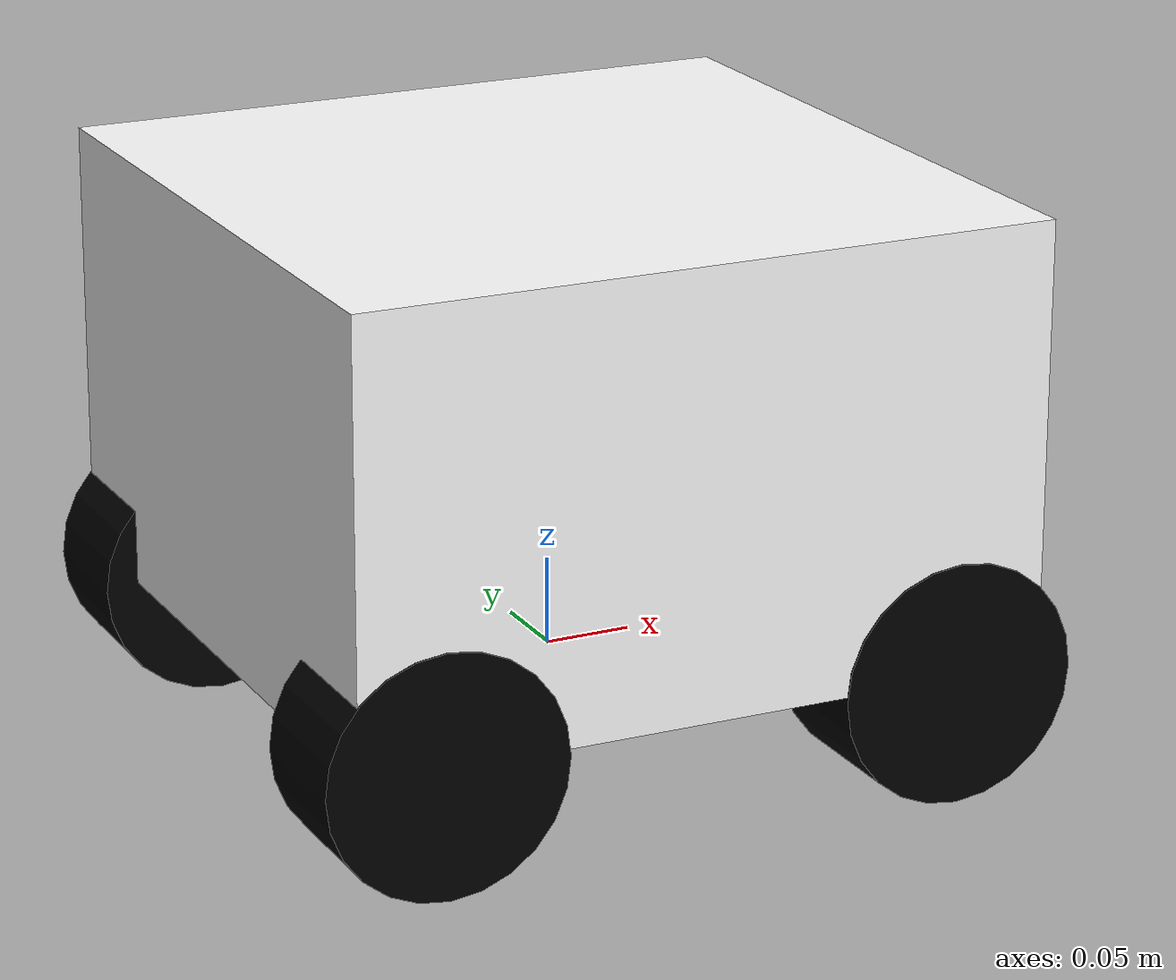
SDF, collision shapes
<sdf version='1.6'>
  <model name='rover_lidar_r1'>
    <link name='base_link'>
      <pose>0 0 0 0 -0 0</pose>
      <inertial>
        <pose>0 0 0 0 -0 0</pose>
        <mass>20.0</mass>
        <inertia>
          <ixx>0.37083</ixx>
          <ixy>0.0</ixy>
          <ixz>0.0</ixz>
          <iyy>0.37083</iyy>
          <iyz>0.0</iyz>
          <izz>0.53333</izz>
        </inertia>
      </inertial>
      <collision name='odom_fixed_joint_lump__base_link_collision'>
        <pose>0 0 0.15 0 -0 0</pose>
        <geometry>
          <box>
            <size>0.4 0.4 0.25</size>
          </box>
        </geometry>
        <surface>
          <contact>
            <ode />
          </contact>
          <friction>
            <ode />
          </friction>
        </surface>
      </collision>
      <visual name='odom_fixed_joint_lump__base_link_visual'>
        <pose>0 0 0 0 -0 0</pose>
        <geometry>
          <mesh>
            <scale>1 1 1</scale>
            <uri>model://rover_lidar_r1/meshes/chassis_link.STL</uri>
          </mesh>
        </geometry>
        <material>
          <diffuse>1.0 1.0 1.0</diffuse>
          <specular>1.0 1.0 1.0</specular>
        </material>
      </visual>
      <visual name='odom_fixed_joint_lump__top_link_visual_1'>
        <pose>0 0 0.114486 0 -0 0</pose>
        <geometry>
          <mesh>
            <scale>1 1 1</scale>
            <uri>model://rover_lidar_r1/meshes/top_link.STL</uri>
          </mesh>
        </geometry>
        <material>
          <diffuse>1.0 1.0 1.0</diffuse>
          <specular>1.0 1.0 1.0</specular>
        </material>
      </visual>
      <visual name='odom_fixed_joint_lump__battery_link_visual_2'>
        <pose>-0.09302 -0.000128 0.114486 0 -0 0</pose>
        <geometry>
          <mesh>
            <scale>1 1 1</scale>
            <uri>model://rover_lidar_r1/meshes/battery_link.STL</uri>
          </mesh>
        </geometry>
        <material>
          <diffuse>0.0 0.0 0.0</diffuse>
          <specular>0.5 0.5 0.5</specular>
        </material>
      </visual>
      <visual name='odom_fixed_joint_lump__housing_link_visual_3'>
        <pose>0.03473 0 0.114486 0 -0 0</pose>
        <geometry>
          <mesh>
            <scale>1 1 1</scale>
            <uri>model://rover_lidar_r1/meshes/housing_link.STL</uri>
          </mesh>
        </geometry>
        <material>
          <diffuse>0.0 0.0 0.0</diffuse>
          <specular>0.5 0.5 0.5</specular>
        </material>
      </visual>
      <visual name='odom_fixed_joint_lump__l_antenna_link_visual_4'>
        <pose>-0.1565 0.0762 0.114486 0 -0 0</pose>
        <geometry>
          <mesh>
            <scale>1 1 1</scale>
            <uri>model://rover_lidar_r1/meshes/antenna_link.STL</uri>
          </mesh>
        </geometry>
        <material>
          <diffuse>0.0 0.0 0.0</diffuse>
          <specular>0.5 0.5 0.5</specular>
        </material>
      </visual>
      <visual name='odom_fixed_joint_lump__r_antenna_link_visual_5'>
        <pose>-0.1565 -0.0762 0.114486 0 -0 0</pose>
        <geometry>
          <mesh>
            <scale>1 1 1</scale>
            <uri>model://rover_lidar_r1/meshes/antenna_link.STL</uri>
          </mesh>
        </geometry>
        <material>
          <diffuse>0.0 0.0 0.0</diffuse>
          <specular>0.5 0.5 0.5</specular>
        </material>
      </visual>
      <velocity_decay />
      <velocity_decay />
      <velocity_decay />
      <velocity_decay />
      <velocity_decay />
      <gravity>1</gravity>
      <velocity_decay />
      <sensor name="imu_sensor" type="imu">
        <always_on>1</always_on>
        <update_rate>250</update_rate>
        <imu>
          <angular_velocity>
            <x>
              <noise type="gaussian">
                <mean>0</mean>
                <stddev>0.0003394</stddev>
                <dynamic_bias_stddev>3.8785e-05</dynamic_bias_stddev>
                <dynamic_bias_correlation_time>1000</dynamic_bias_correlation_time>
              </noise>
            </x>
            <y>
              <noise type="gaussian">
                <mean>0</mean>
                <stddev>0.0003394</stddev>
                <dynamic_bias_stddev>3.8785e-05</dynamic_bias_stddev>
                <dynamic_bias_correlation_time>1000</dynamic_bias_correlation_time>
              </noise>
            </y>
            <z>
              <noise type="gaussian">
                <mean>0</mean>
                <stddev>0.0003394</stddev>
                <dynamic_bias_stddev>3.8785e-05</dynamic_bias_stddev>
                <dynamic_bias_correlation_time>1000</dynamic_bias_correlation_time>
              </noise>
            </z>
          </angular_velocity>
          <linear_acceleration>
            <x>
              <noise type="gaussian">
                <mean>0</mean>
                <stddev>0.004</stddev>
                <dynamic_bias_stddev>0.006</dynamic_bias_stddev>
                <dynamic_bias_correlation_time>300</dynamic_bias_correlation_time>
              </noise>
            </x>
            <y>
              <noise type="gaussian">
                <mean>0</mean>
                <stddev>0.004</stddev>
                <dynamic_bias_stddev>0.006</dynamic_bias_stddev>
                <dynamic_bias_correlation_time>300</dynamic_bias_correlation_time>
              </noise>
            </y>
            <z>
              <noise type="gaussian">
                <mean>0</mean>
                <stddev>0.004</stddev>
                <dynamic_bias_stddev>0.006</dynamic_bias_stddev>
                <dynamic_bias_correlation_time>300</dynamic_bias_correlation_time>
              </noise>
            </z>
          </linear_acceleration>
        </imu>
      </sensor>
      <sensor name="air_pressure_sensor" type="air_pressure">
        <always_on>1</always_on>
        <update_rate>50</update_rate>
        <air_pressure>
          <pressure>
            <noise type="gaussian">
              <mean>0</mean>
              <stddev>0.01</stddev>
            </noise>
          </pressure>
        </air_pressure>
      </sensor>
      <sensor name="magnetometer_sensor" type="magnetometer">
        <always_on>1</always_on>
        <update_rate>100</update_rate>
        <magnetometer>
          <x>
            <noise type="gaussian">
              <stddev>0.0001</stddev>
            </noise>
          </x>
          <y>
            <noise type="gaussian">
              <stddev>0.0001</stddev>
            </noise>
          </y>
          <z>
            <noise type="gaussian">
              <stddev>0.0001</stddev>
            </noise>
          </z>
        </magnetometer>
      </sensor>
      <sensor name="navsat_sensor" type="navsat">
        <always_on>1</always_on>
        <update_rate>30</update_rate>
      </sensor>

    </link>
    <link name='lf_wheel_link'>
      <pose>0.15 0.16317 0.0215 0 -0 0</pose>
      <inertial>
        <pose>0 0 0 1.57079632679 0 0</pose>
        <mass>0.414</mass>
        <inertia>
          <ixx>0.00068682</ixx>
          <ixy>0</ixy>
          <ixz>0</ixz>
          <iyy>0.00068682</iyy>
          <iyz>0</iyz>
          <izz>0.00097299</izz>
        </inertia>
      </inertial>
      <collision name='lf_wheel_link_collision'>
        <pose>0 0 0 1.57079632679 0 0</pose>
        <geometry>
          <cylinder>
            <radius>0.0686</radius>
            <length>0.0762</length>
          </cylinder>
        </geometry>
        <max_contacts>1</max_contacts>
        <surface>
          <friction>
            <torsional>
              <coefficient>0.25</coefficient>
              <use_patch_radius>1</use_patch_radius>
              <surface_radius>0.0686</surface_radius>
            </torsional>
            <ode>
              <mu>1.0</mu>
              <mu2>1.0</mu2>
              <fdir1>1 0 0</fdir1>
              <slip1>0.0</slip1>
              <slip2>0.0</slip2>
            </ode>
          </friction>
          <bounce>
            <restitution_coefficient>0</restitution_coefficient>
            <threshold>1e6</threshold>
          </bounce>
          <contact>
            <ode>
              <min_depth>0.001</min_depth>
              <max_vel>0.0</max_vel>
              <kp>1.0e6</kp>
              <kd>100.0</kd>
            </ode>
          </contact>
        </surface>
      </collision>
      <visual name='lf_wheel_link_visual'>
        <pose>0 0 0 0 -0 0</pose>
        <geometry>
          <mesh>
            <scale>1 1 1</scale>
            <uri>model://rover_lidar_r1/meshes/wheel_link.STL</uri>
          </mesh>
        </geometry>
        <material>
          <diffuse>0.0 0.0 0.0</diffuse>
          <specular>0.5 0.5 0.5</specular>
        </material>
      </visual>
      <gravity>1</gravity>
      <velocity_decay />
    </link>
    <joint name='motor_0' type='revolute'>
      <child>lf_wheel_link</child>
      <parent>base_link</parent>
      <axis>
        <xyz>0 1 0</xyz>
        <limit>
          <lower>-1e+16</lower>
          <upper>1e+16</upper>
        </limit>
        <dynamics>
          <spring_reference>0</spring_reference>
          <spring_stiffness>0</spring_stiffness>
        </dynamics>
        <use_parent_model_frame>1</use_parent_model_frame>
      </axis>
    </joint>
    <link name='lb_wheel_link'>
      <pose>-0.15 0.16317 0.0215 0 -0 0</pose>
      <inertial>
        <pose>0 0 0 1.57079632679 0 0</pose>
        <mass>0.414</mass>
        <inertia>
          <ixx>0.00068682</ixx>
          <ixy>0</ixy>
          <ixz>0</ixz>
          <iyy>0.00068682</iyy>
          <iyz>0</iyz>
          <izz>0.00097299</izz>
        </inertia>
      </inertial>
      <collision name='lb_wheel_link_collision'>
        <pose>0 0 0 1.57079632679 0 0</pose>
        <geometry>
          <cylinder>
            <radius>0.0686</radius>
            <length>0.0762</length>
          </cylinder>
        </geometry>
        <max_contacts>1</max_contacts>
        <surface>
          <friction>
            <torsional>
              <coefficient>0.25</coefficient>
              <use_patch_radius>1</use_patch_radius>
              <surface_radius>0.0686</surface_radius>
            </torsional>
            <ode>
              <mu>1.0</mu>
              <mu2>1.0</mu2>
              <fdir1>1 0 0</fdir1>
              <slip1>0.0</slip1>
              <slip2>0.0</slip2>
            </ode>
          </friction>
          <bounce>
            <restitution_coefficient>0</restitution_coefficient>
            <threshold>1e6</threshold>
          </bounce>
          <contact>
            <ode>
              <min_depth>0.001</min_depth>
              <max_vel>0.0</max_vel>
              <kp>1.0e6</kp>
              <kd>100.0</kd>
            </ode>
          </contact>
        </surface>
      </collision>
      <visual name='lb_wheel_link_visual'>
        <pose>0 0 0 0 -0 0</pose>
        <geometry>
          <mesh>
            <scale>1 1 1</scale>
            <uri>model://rover_lidar_r1/meshes/wheel_link.STL</uri>
          </mesh>
        </geometry>
        <material>
          <diffuse>0.0 0.0 0.0</diffuse>
          <specular>0.5 0.5 0.5</specular>
        </material>
      </visual>
      <gravity>1</gravity>
      <velocity_decay />
    </link>
    <joint name='motor_1' type='revolute'>
      <child>lb_wheel_link</child>
      <parent>base_link</parent>
      <axis>
        <xyz>0 1 0</xyz>
        <limit>
          <lower>-1e+16</lower>
          <upper>1e+16</upper>
        </limit>
        <dynamics>
          <spring_reference>0</spring_reference>
          <spring_stiffness>0</spring_stiffness>
        </dynamics>
        <use_parent_model_frame>1</use_parent_model_frame>
      </axis>
    </joint>
    <link name='rf_wheel_link'>
      <pose>0.15 -0.16317 0.0215 0 -0 0</pose>
      <inertial>
        <pose>0 0 0 1.57079632679 0 0</pose>
        <mass>0.414</mass>
        <inertia>
          <ixx>0.00068682</ixx>
          <ixy>0</ixy>
          <ixz>0</ixz>
          <iyy>0.00068682</iyy>
          <iyz>0</iyz>
          <izz>0.00097299</izz>
        </inertia>
      </inertial>
      <collision name='rf_wheel_link_collision'>
        <pose>0 0 0 1.57079632679 0 0</pose>
        <geometry>
          <cylinder>
            <radius>0.0686</radius>
            <length>0.0762</length>
          </cylinder>
        </geometry>
        <max_contacts>1</max_contacts>
        <surface>
          <friction>
            <torsional>
              <coefficient>0.25</coefficient>
              <use_patch_radius>1</use_patch_radius>
              <surface_radius>0.0686</surface_radius>
            </torsional>
            <ode>
              <mu>1.0</mu>
              <mu2>1.0</mu2>
              <fdir1>1 0 0</fdir1>
              <slip1>0.0</slip1>
              <slip2>0.0</slip2>
            </ode>
          </friction>
          <bounce>
            <restitution_coefficient>0</restitution_coefficient>
            <threshold>1e6</threshold>
          </bounce>
          <contact>
            <ode>
              <min_depth>0.001</min_depth>
              <max_vel>0.0</max_vel>
              <kp>1.0e6</kp>
              <kd>100.0</kd>
            </ode>
          </contact>
        </surface>
      </collision>
      <visual name='rf_wheel_link_visual'>
        <pose>0 0 0 0 -0 0</pose>
        <geometry>
          <mesh>
            <scale>1 1 1</scale>
            <uri>model://rover_lidar_r1/meshes/wheel_link.STL</uri>
          </mesh>
        </geometry>
        <material>
          <diffuse>0.0 0.0 0.0</diffuse>
          <specular>0.5 0.5 0.5</specular>
        </material>
      </visual>
      <gravity>1</gravity>
      <velocity_decay />
    </link>
    <joint name='motor_2' type='revolute'>
      <child>rf_wheel_link</child>
      <parent>base_link</parent>
      <axis>
        <xyz>0 -1 0</xyz>
        <limit>
          <lower>-1e+16</lower>
          <upper>1e+16</upper>
        </limit>
        <dynamics>
          <spring_reference>0</spring_reference>
          <spring_stiffness>0</spring_stiffness>
        </dynamics>
        <use_parent_model_frame>1</use_parent_model_frame>
      </axis>
    </joint>
    <link name='rb_wheel_link'>
      <pose>-0.15 -0.16317 0.0215 0 -0 0</pose>
      <inertial>
        <pose>0 0 0 1.57079632679 0 0</pose>
        <mass>0.414</mass>
        <inertia>
          <ixx>0.00068682</ixx>
          <ixy>0</ixy>
          <ixz>0</ixz>
          <iyy>0.00068682</iyy>
          <iyz>0</iyz>
          <izz>0.00097299</izz>
        </inertia>
      </inertial>
      <collision name='rb_wheel_link_collision'>
        <pose>0 0 0 1.57079632679 0 0</pose>
        <geometry>
          <cylinder>
            <radius>0.0686</radius>
            <length>0.0762</length>
          </cylinder>
        </geometry>
        <max_contacts>1</max_contacts>
        <surface>
          <friction>
            <torsional>
              <coefficient>0.25</coefficient>
              <use_patch_radius>1</use_patch_radius>
              <surface_radius>0.0686</surface_radius>
            </torsional>
            <ode>
              <mu>1.0</mu>
              <mu2>1.0</mu2>
              <fdir1>1 0 0</fdir1>
              <slip1>0.0</slip1>
              <slip2>0.0</slip2>
            </ode>
          </friction>
          <bounce>
            <restitution_coefficient>0</restitution_coefficient>
            <threshold>1e6</threshold>
          </bounce>
          <contact>
            <ode>
              <min_depth>0.001</min_depth>
              <kp>1e8</kp>
            </ode>
          </contact>
        </surface>
      </collision>
      <visual name='rb_wheel_link_visual'>
        <pose>0 0 0 0 -0 0</pose>
        <geometry>
          <mesh>
            <scale>1 1 1</scale>
            <uri>model://rover_lidar_r1/meshes/wheel_link.STL</uri>
          </mesh>
        </geometry>
        <material>
          <diffuse>0.0 0.0 0.0</diffuse>
          <specular>0.5 0.5 0.5</specular>
        </material>
      </visual>
      <gravity>1</gravity>
      <velocity_decay />
    </link>
    <joint name='motor_3' type='revolute'>
      <child>rb_wheel_link</child>
      <parent>base_link</parent>
      <axis>
        <xyz>0 -1 0</xyz>
        <limit>
          <lower>-1e+16</lower>
          <upper>1e+16</upper>
        </limit>
        <dynamics>
          <spring_reference>0</spring_reference>
          <spring_stiffness>0</spring_stiffness>
        </dynamics>
        <use_parent_model_frame>1</use_parent_model_frame>
      </axis>
    </joint>
    <static>0</static>
    <plugin filename="gz-sim-joint-controller-system" name="gz::sim::systems::JointController">
      <joint_name>motor_0</joint_name>
      <sub_topic>command/motor_speed</sub_topic>
      <use_actuator_msg>true</use_actuator_msg>
      <actuator_number>1</actuator_number>
      <p_gain>10.0</p_gain>
    </plugin>
    <plugin filename="gz-sim-joint-controller-system" name="gz::sim::systems::JointController">
      <joint_name>motor_1</joint_name>
      <sub_topic>command/motor_speed</sub_topic>
      <use_actuator_msg>true</use_actuator_msg>
      <actuator_number>1</actuator_number>
      <p_gain>10.0</p_gain>
    </plugin>
    <plugin filename="gz-sim-joint-controller-system" name="gz::sim::systems::JointController">
      <joint_name>motor_2</joint_name>
      <sub_topic>command/motor_speed</sub_topic>
      <use_actuator_msg>true</use_actuator_msg>
      <actuator_number>0</actuator_number>
      <p_gain>10.0</p_gain>
    </plugin>
    <plugin filename="gz-sim-joint-controller-system" name="gz::sim::systems::JointController">
      <joint_name>motor_3</joint_name>
      <sub_topic>command/motor_speed</sub_topic>
      <use_actuator_msg>true</use_actuator_msg>
      <actuator_number>0</actuator_number>
      <p_gain>10.0</p_gain>
    </plugin>
    <plugin
      filename="gz-sim-joint-state-publisher-system"
      name="gz::sim::systems::JointStatePublisher">
      <joint_name>motor_0</joint_name>
      <joint_name>motor_1</joint_name>
      <joint_name>motor_2</joint_name>
      <joint_name>motor_3</joint_name>
    </plugin>

    <link name="lidar_link">
      <pose>0.13 0 0.13 0 0 0</pose>
      <inertial>
        <mass>0.2</mass>
        <inertia>
          <ixx>0.0001</ixx>
          <iyy>0.0001</iyy>
          <izz>0.0001</izz>
          <ixy>0</ixy>
          <ixz>0</ixz>
          <iyz>0</iyz>
        </inertia>
      </inertial>
      <collision name="collision">
        <geometry>
          <cylinder>
            <radius>0.032</radius>
            <length>0.04</length>
          </cylinder>
        </geometry>
      </collision>
      <visual name="visual">
        <geometry>
          <cylinder>
            <radius>0.032</radius>
            <length>0.04</length>
          </cylinder>
        </geometry>
        <material>
          <ambient>0.1 0.1 0.1 1</ambient>
          <diffuse>0.2 0.2 0.2 1</diffuse>
        </material>
      </visual>

      <sensor name="gpu_lidar" type="gpu_lidar">
        <pose>0 0 0 0 0 0</pose>
        <always_on>true</always_on>
        <update_rate>10</update_rate>
        <topic>/scan</topic>
        <visualize>true</visualize>
        <ray>
          <scan>
            <horizontal>
              <samples>720</samples>
              <resolution>1</resolution>
              <min_angle>-2.64159</min_angle>
              <max_angle>2.64159</max_angle>
            </horizontal>
          </scan>
          <range>
            <min>0.12</min>
            <max>20.0</max>
            <resolution>0.01</resolution>
          </range>
        </ray>
      </sensor>
    </link>
    <joint name="lidar_joint" type="fixed">
      <parent>base_link</parent>
      <child>lidar_link</child>
    </joint>

    <plugin filename="gz-sim-air-pressure-system" name="gz::sim::systems::AirPressure"/>
    <plugin filename="gz-sim-magnetometer-system" name="gz::sim::systems::Magnetometer"/>
    <plugin filename="gz-sim-navsat-system" name="gz::sim::systems::NavSat"/>

  </model>
</sdf>
